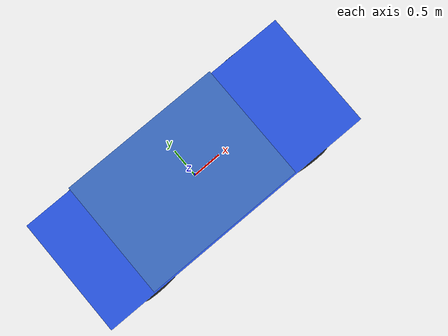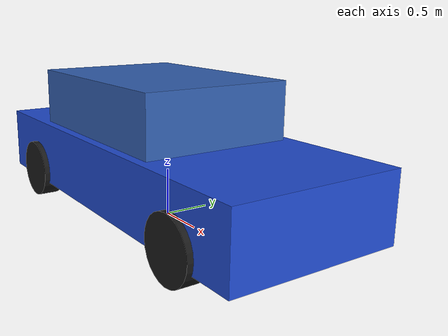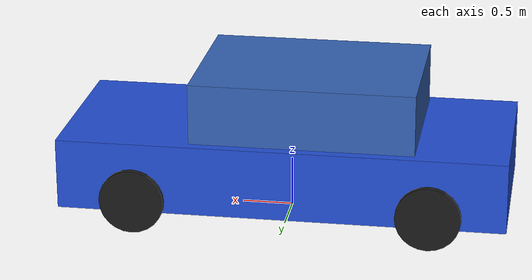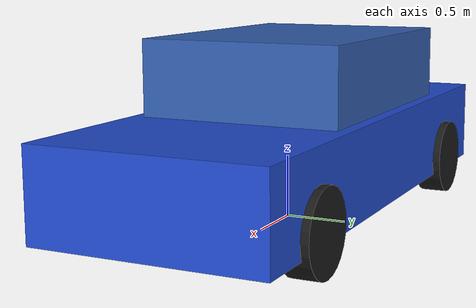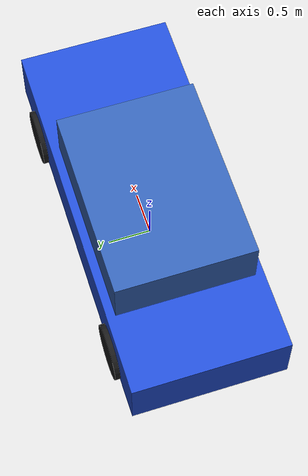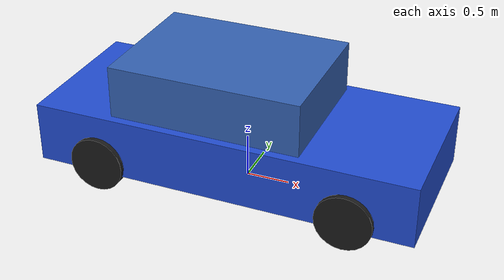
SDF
<?xml version="1.0"?>
<sdf version="1.9">
  <model name="yungu_car">
    <static>true</static>
    <link name="body">
      <visual name="chassis">
        <pose>0 0 0.55 0 0 0</pose>
        <geometry><box><size>4.40 1.80 0.70</size></box></geometry>
        <material>
          <ambient>0.06 0.12 0.34 1</ambient>
          <diffuse>0.13 0.30 0.82 1</diffuse>
        </material>
      </visual>
      <visual name="cabin">
        <pose>-0.20 0 1.20 0 0 0</pose>
        <geometry><box><size>2.20 1.60 0.60</size></box></geometry>
        <material>
          <ambient>0.08 0.14 0.28 1</ambient>
          <diffuse>0.20 0.38 0.70 1</diffuse>
        </material>
      </visual>
      <visual name="wheel_fl">
        <pose>1.45 0.85 0.32 1.5707963268 0 0</pose>
        <geometry><cylinder><radius>0.32</radius><length>0.22</length></cylinder></geometry>
        <material><ambient>0.05 0.05 0.05 1</ambient><diffuse>0.10 0.10 0.10 1</diffuse></material>
      </visual>
      <visual name="wheel_fr">
        <pose>1.45 -0.85 0.32 1.5707963268 0 0</pose>
        <geometry><cylinder><radius>0.32</radius><length>0.22</length></cylinder></geometry>
        <material><ambient>0.05 0.05 0.05 1</ambient><diffuse>0.10 0.10 0.10 1</diffuse></material>
      </visual>
      <visual name="wheel_rl">
        <pose>-1.45 0.85 0.32 1.5707963268 0 0</pose>
        <geometry><cylinder><radius>0.32</radius><length>0.22</length></cylinder></geometry>
        <material><ambient>0.05 0.05 0.05 1</ambient><diffuse>0.10 0.10 0.10 1</diffuse></material>
      </visual>
      <visual name="wheel_rr">
        <pose>-1.45 -0.85 0.32 1.5707963268 0 0</pose>
        <geometry><cylinder><radius>0.32</radius><length>0.22</length></cylinder></geometry>
        <material><ambient>0.05 0.05 0.05 1</ambient><diffuse>0.10 0.10 0.10 1</diffuse></material>
      </visual>
      <collision name="body_collision">
        <pose>0 0 0.75 0 0 0</pose>
        <geometry><box><size>4.40 1.80 1.50</size></box></geometry>
      </collision>
    </link>
  </model>
</sdf>
